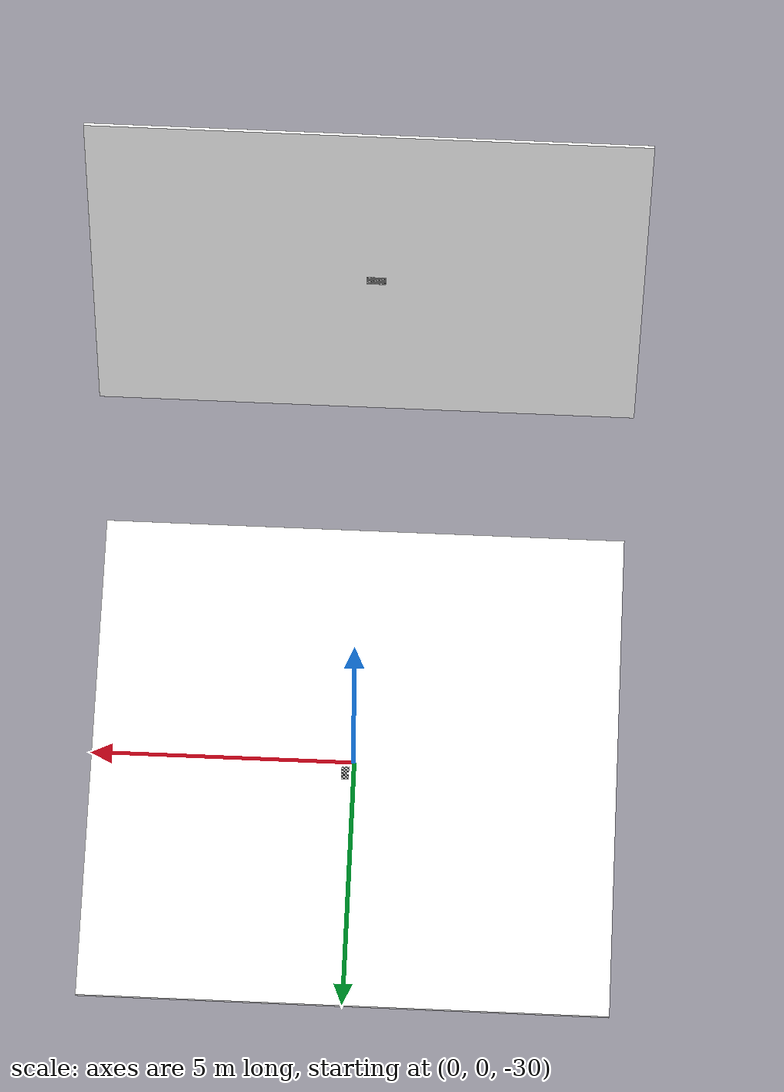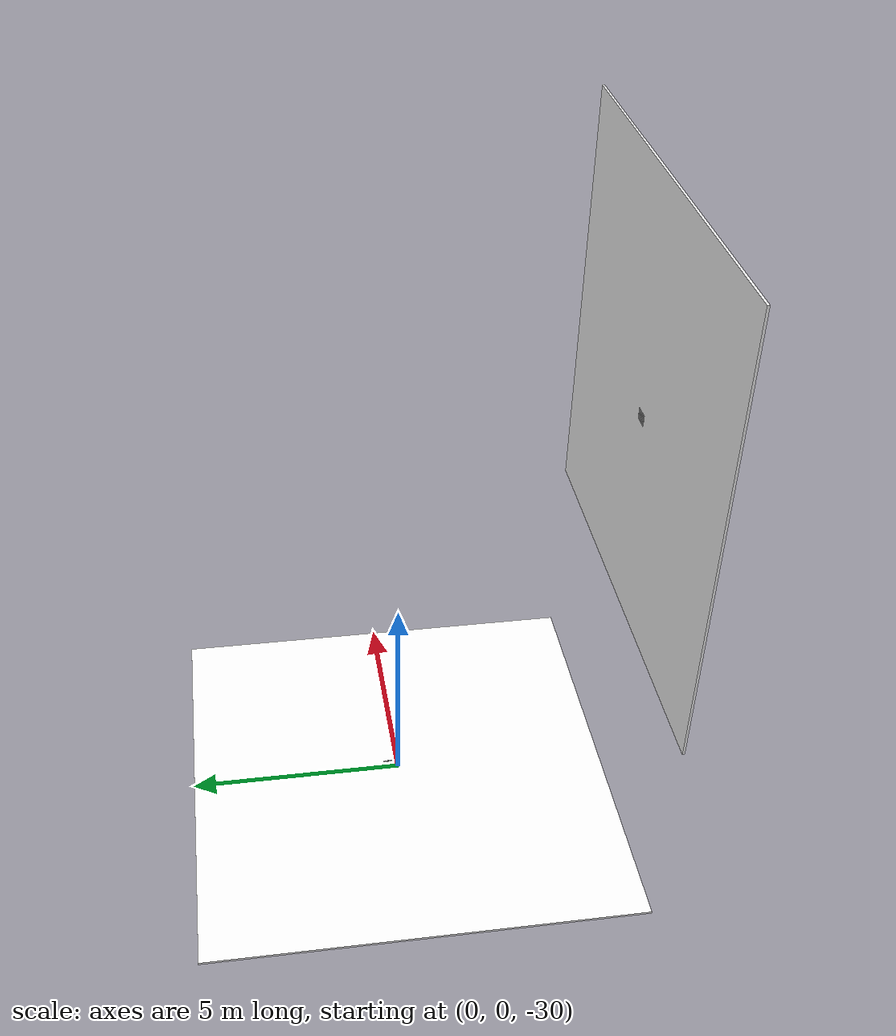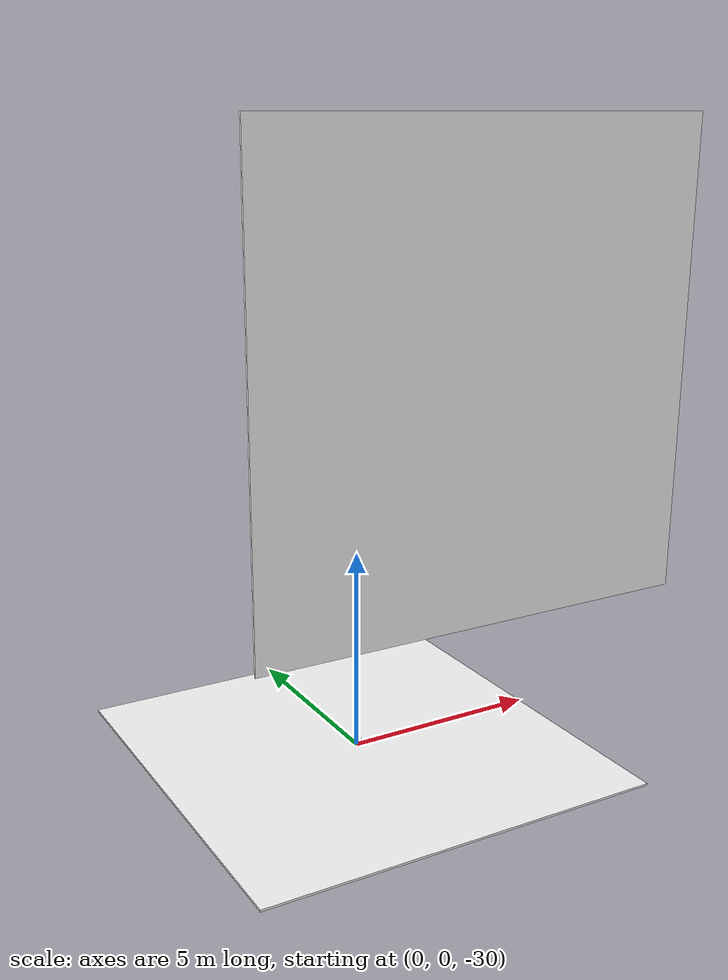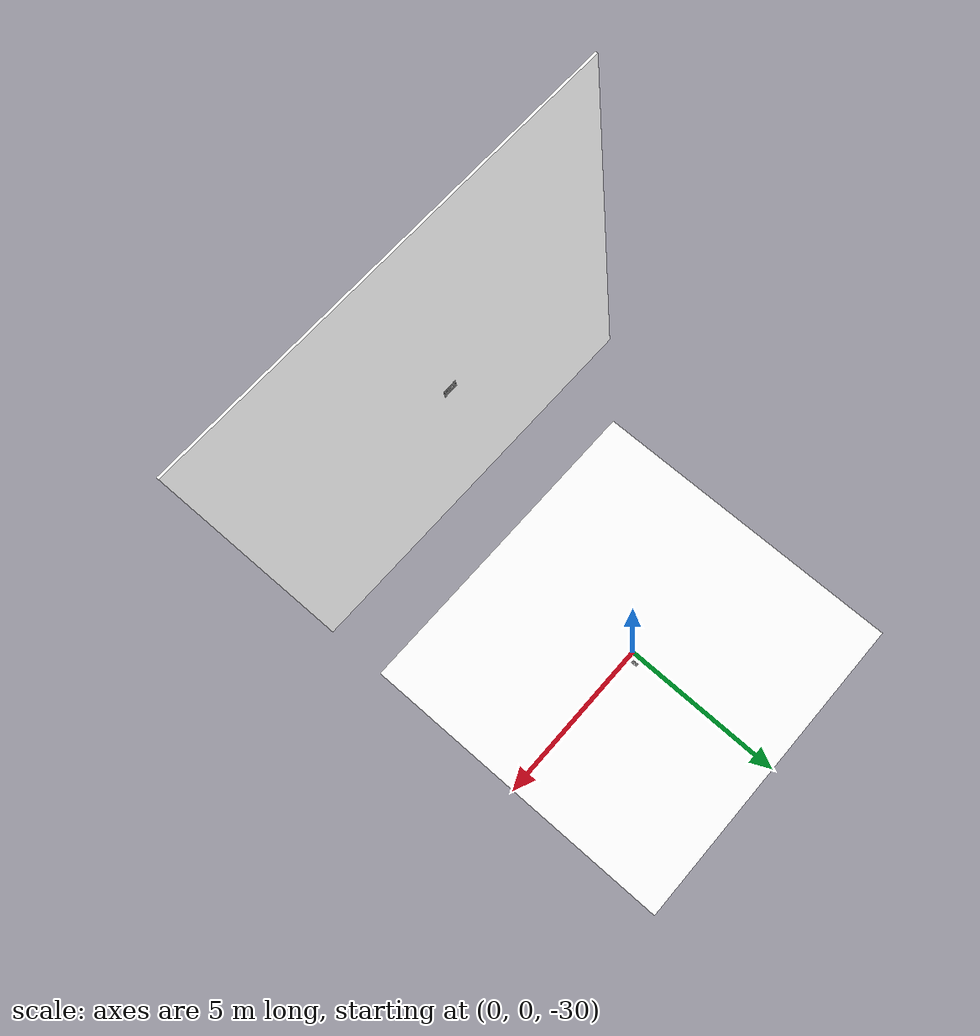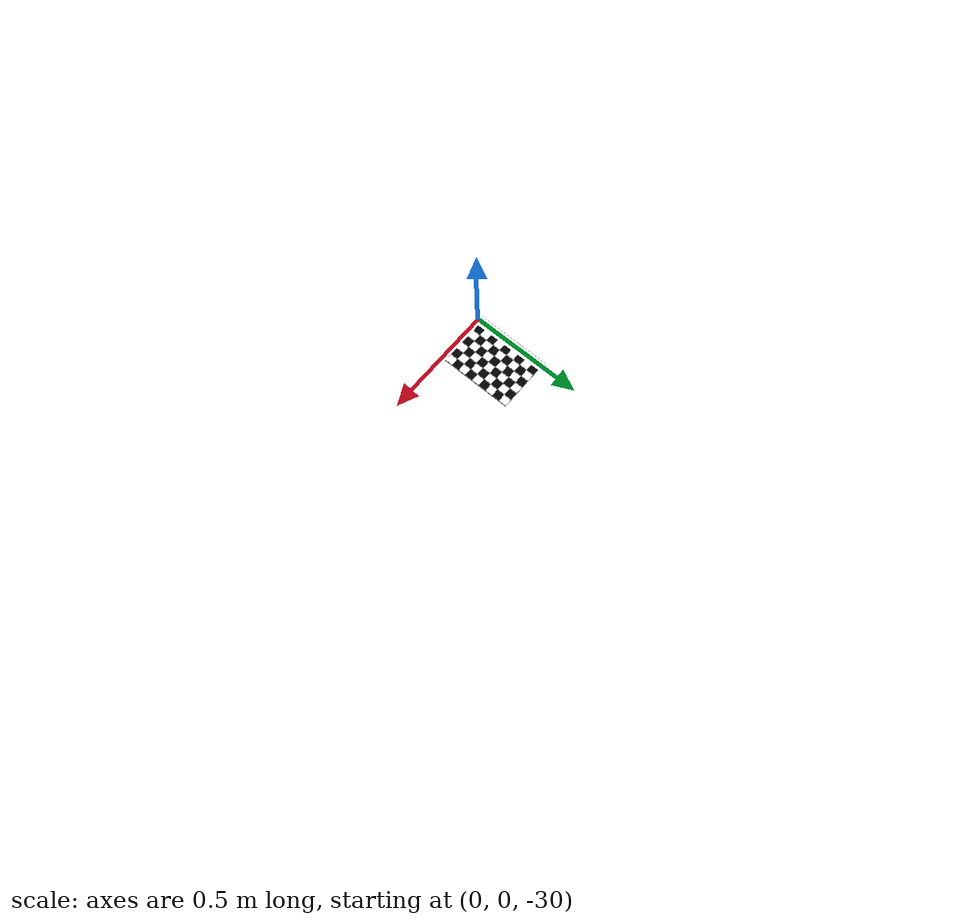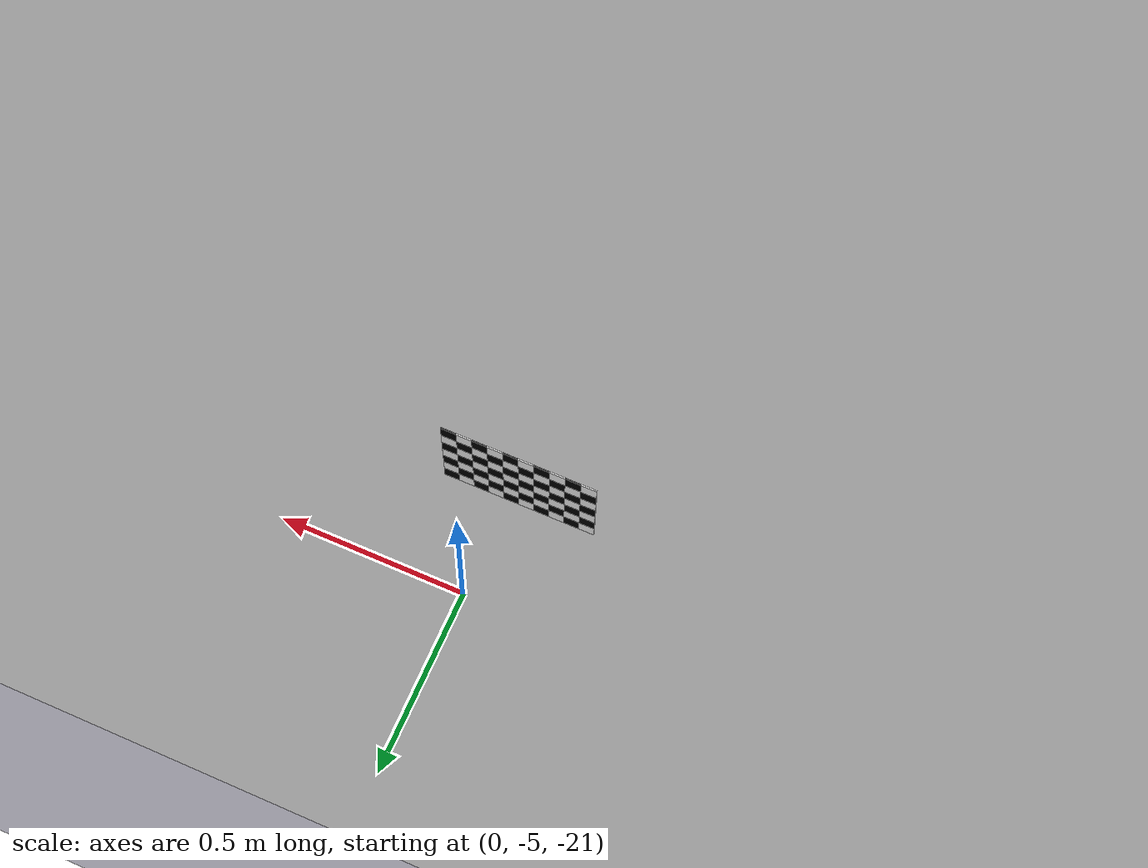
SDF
<sdf version="1.4">
 <world name="camera_calibration">
  <physics type="ode">
   <max_step_size>0.01</max_step_size>
   <real_time_factor>1</real_time_factor>
   <real_time_update_rate>100</real_time_update_rate>
  </physics>
  <model name="nwu">
   <static>true</static>
   <link name="base"/>
   <link name="orientation"/>
   <joint name="__joint_orientation" type="fixed"><child>orientation</child><parent>base</parent></joint>
  </model>
  <model name="surface"><static>true</static></model>
  <model name="usbl"><static>true</static></model>
  <include><uri>model://chessboard</uri><name>chessboard_down</name><pose>0 0 -30 0 0 0</pose></include>
  <include><uri>model://chessboard</uri><name>chessboard_front</name><pose>0 -5 -20 0 1.57 1.57</pose></include>
  <plugin name="underwater" filename="libgazebo_underwater.so">
   <model_name>flat_fish</model_name>
   <drag_coefficient>5 7.5 12.5</drag_coefficient>
   <link_name>flat_fish_body</link_name>
   <center_of_buoyancy>0 0 0.1</center_of_buoyancy>
   <buoyancy>18</buoyancy>
  </plugin>
 </world>
</sdf>

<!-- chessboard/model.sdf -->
<sdf version="1.4">
  <model name='chessboard'>
  <static>true</static>
  <pose>0 0 0 0 0 0</pose>

    <!-- Auxiliary white background -->
     <link name='chessboard_back_plane'>
       <visual name='block0'>
         <pose>0 0 -0.05 0 0 0</pose>
           <geometry>
             <box>
               <size>10 10 0.05</size>
             </box>
           </geometry>
         <material>
           <ambient>1 1 1 1</ambient>
           <diffuse>1 1 1 1</diffuse>
           <specular>1 1 1 1</specular>
         </material>
       </visual>
     </link>

     <link name='chessboard_body'>
      <visual name='block0'>
        <pose>0 0 0.001 0 0 0</pose>
          <geometry>
            <box>
            <size>0.035 0.035 0.003</size>
            </box>
          </geometry>
        <material>
          <ambient>0 0 0 1</ambient>
          <diffuse>0 0 0 1</diffuse>
          <specular>0 0 0 1</specular>
        </material>
      </visual>
      <visual name='block1'>
        <pose>0 0.035 0.001 0 0 0</pose>
          <geometry>
            <box>
            <size>0.035 0.035 0.003</size>
            </box>
          </geometry>
        <material>
          <ambient>1 1 1 1</ambient>
          <diffuse>1 1 1 1</diffuse>
          <specular>1 1 1 1</specular>
        </material>
      </visual>
      <visual name='block2'>
        <pose>0 0.07 0.001 0 0 0</pose>
          <geometry>
            <box>
            <size>0.035 0.035 0.003</size>
            </box>
          </geometry>
        <material>
          <ambient>0 0 0 1</ambient>
          <diffuse>0 0 0 1</diffuse>
          <specular>0 0 0 1</specular>
        </material>
      </visual>
      <visual name='block3'>
        <pose>0 0.105 0.001 0 0 0</pose>
          <geometry>
            <box>
            <size>0.035 0.035 0.003</size>
            </box>
          </geometry>
        <material>
          <ambient>1 1 1 1</ambient>
          <diffuse>1 1 1 1</diffuse>
          <specular>1 1 1 1</specular>
        </material>
      </visual>
      <visual name='block4'>
        <pose>0 0.14 0.001 0 0 0</pose>
          <geometry>
            <box>
            <size>0.035 0.035 0.003</size>
            </box>
          </geometry>
        <material>
          <ambient>0 0 0 1</ambient>
          <diffuse>0 0 0 1</diffuse>
          <specular>0 0 0 1</specular>
        </material>
      </visual>
      <visual name='block5'>
        <pose>0 0.175 0.001 0 0 0</pose>
          <geometry>
            <box>
            <size>0.035 0.035 0.003</size>
            </box>
          </geometry>
        <material>
          <ambient>1 1 1 1</ambient>
          <diffuse>1 1 1 1</diffuse>
          <specular>1 1 1 1</specular>
        </material>
      </visual>
      <visual name='block6'>
        <pose>0 0.21 0.001 0 0 0</pose>
          <geometry>
            <box>
            <size>0.035 0.035 0.003</size>
            </box>
          </geometry>
        <material>
          <ambient>0 0 0 1</ambient>
          <diffuse>0 0 0 1</diffuse>
          <specular>0 0 0 1</specular>
        </material>
      </visual>
      <visual name='block7'>
        <pose>0 0.245 0.001 0 0 0</pose>
          <geometry>
            <box>
            <size>0.035 0.035 0.003</size>
            </box>
          </geometry>
        <material>
          <ambient>1 1 1 1</ambient>
          <diffuse>1 1 1 1</diffuse>
          <specular>1 1 1 1</specular>
        </material>
      </visual>
      <visual name='block8'>
        <pose>0 0.28 0.001 0 0 0</pose>
          <geometry>
            <box>
            <size>0.035 0.035 0.003</size>
            </box>
          </geometry>
        <material>
          <ambient>0 0 0 1</ambient>
          <diffuse>0 0 0 1</diffuse>
          <specular>0 0 0 1</specular>
        </material>
      </visual>
      <visual name='block9'>
        <pose>0 0.315 0.001 0 0 0</pose>
          <geometry>
            <box>
            <size>0.035 0.035 0.003</size>
            </box>
          </geometry>
        <material>
          <ambient>1 1 1 1</ambient>
          <diffuse>1 1 1 1</diffuse>
          <specular>1 1 1 1</specular>
        </material>
      </visual>
      <visual name='block7'>
        <pose>0.035 0 0.001 0 0 0</pose>
          <geometry>
            <box>
            <size>0.035 0.035 0.003</size>
            </box>
          </geometry>
        <material>
          <ambient>1 1 1 1</ambient>
          <diffuse>1 1 1 1</diffuse>
          <specular>1 1 1 1</specular>
        </material>
      </visual>
      <visual name='block8'>
        <pose>0.035 0.035 0.001 0 0 0</pose>
          <geometry>
            <box>
            <size>0.035 0.035 0.003</size>
            </box>
          </geometry>
        <material>
          <ambient>0 0 0 1</ambient>
          <diffuse>0 0 0 1</diffuse>
          <specular>0 0 0 1</specular>
        </material>
      </visual>
      <visual name='block9'>
        <pose>0.035 0.07 0.001 0 0 0</pose>
          <geometry>
            <box>
            <size>0.035 0.035 0.003</size>
            </box>
          </geometry>
        <material>
          <ambient>1 1 1 1</ambient>
          <diffuse>1 1 1 1</diffuse>
          <specular>1 1 1 1</specular>
        </material>
      </visual>
      <visual name='block10'>
        <pose>0.035 0.105 0.001 0 0 0</pose>
          <geometry>
            <box>
            <size>0.035 0.035 0.003</size>
            </box>
          </geometry>
        <material>
          <ambient>0 0 0 1</ambient>
          <diffuse>0 0 0 1</diffuse>
          <specular>0 0 0 1</specular>
        </material>
      </visual>
      <visual name='block11'>
        <pose>0.035 0.14 0.001 0 0 0</pose>
          <geometry>
            <box>
            <size>0.035 0.035 0.003</size>
            </box>
          </geometry>
        <material>
          <ambient>1 1 1 1</ambient>
          <diffuse>1 1 1 1</diffuse>
          <specular>1 1 1 1</specular>
        </material>
      </visual>
      <visual name='block12'>
        <pose>0.035 0.175 0.001 0 0 0</pose>
          <geometry>
            <box>
            <size>0.035 0.035 0.003</size>
            </box>
          </geometry>
        <material>
          <ambient>0 0 0 1</ambient>
          <diffuse>0 0 0 1</diffuse>
          <specular>0 0 0 1</specular>
        </material>
      </visual>
      <visual name='block13'>
        <pose>0.035 0.21 0.001 0 0 0</pose>
          <geometry>
            <box>
            <size>0.035 0.035 0.003</size>
            </box>
          </geometry>
        <material>
          <ambient>1 1 1 1</ambient>
          <diffuse>1 1 1 1</diffuse>
          <specular>1 1 1 1</specular>
        </material>
      </visual>
      <visual name='block14'>
        <pose>0.035 0.245 0.001 0 0 0</pose>
          <geometry>
            <box>
            <size>0.035 0.035 0.003</size>
            </box>
          </geometry>
        <material>
          <ambient>0 0 0 1</ambient>
          <diffuse>0 0 0 1</diffuse>
          <specular>0 0 0 1</specular>
        </material>
      </visual>
      <visual name='block15'>
        <pose>0.035 0.28 0.001 0 0 0</pose>
          <geometry>
            <box>
            <size>0.035 0.035 0.003</size>
            </box>
          </geometry>
        <material>
          <ambient>1 1 1 1</ambient>
          <diffuse>1 1 1 1</diffuse>
          <specular>1 1 1 1</specular>
        </material>
      </visual>
      <visual name='block16'>
        <pose>0.035 0.315 0.001 0 0 0</pose>
          <geometry>
            <box>
            <size>0.035 0.035 0.003</size>
            </box>
          </geometry>
        <material>
          <ambient>0 0 0 1</ambient>
          <diffuse>0 0 0 1</diffuse>
          <specular>0 0 0 1</specular>
        </material>
      </visual>
      <visual name='block14'>
        <pose>0.07 0 0.001 0 0 0</pose>
          <geometry>
            <box>
            <size>0.035 0.035 0.003</size>
            </box>
          </geometry>
        <material>
          <ambient>0 0 0 1</ambient>
          <diffuse>0 0 0 1</diffuse>
          <specular>0 0 0 1</specular>
        </material>
      </visual>
      <visual name='block15'>
        <pose>0.07 0.035 0.001 0 0 0</pose>
          <geometry>
            <box>
            <size>0.035 0.035 0.003</size>
            </box>
          </geometry>
        <material>
          <ambient>1 1 1 1</ambient>
          <diffuse>1 1 1 1</diffuse>
          <specular>1 1 1 1</specular>
        </material>
      </visual>
      <visual name='block16'>
        <pose>0.07 0.07 0.001 0 0 0</pose>
          <geometry>
            <box>
            <size>0.035 0.035 0.003</size>
            </box>
          </geometry>
        <material>
          <ambient>0 0 0 1</ambient>
          <diffuse>0 0 0 1</diffuse>
          <specular>0 0 0 1</specular>
        </material>
      </visual>
      <visual name='block17'>
        <pose>0.07 0.105 0.001 0 0 0</pose>
          <geometry>
            <box>
            <size>0.035 0.035 0.003</size>
            </box>
          </geometry>
        <material>
          <ambient>1 1 1 1</ambient>
          <diffuse>1 1 1 1</diffuse>
          <specular>1 1 1 1</specular>
        </material>
      </visual>
      <visual name='block18'>
        <pose>0.07 0.14 0.001 0 0 0</pose>
          <geometry>
            <box>
            <size>0.035 0.035 0.003</size>
            </box>
          </geometry>
        <material>
          <ambient>0 0 0 1</ambient>
          <diffuse>0 0 0 1</diffuse>
          <specular>0 0 0 1</specular>
        </material>
      </visual>
      <visual name='block19'>
        <pose>0.07 0.175 0.001 0 0 0</pose>
          <geometry>
            <box>
            <size>0.035 0.035 0.003</size>
            </box>
          </geometry>
        <material>
          <ambient>1 1 1 1</ambient>
          <diffuse>1 1 1 1</diffuse>
          <specular>1 1 1 1</specular>
        </material>
      </visual>
      <visual name='block20'>
        <pose>0.07 0.21 0.001 0 0 0</pose>
          <geometry>
            <box>
            <size>0.035 0.035 0.003</size>
            </box>
          </geometry>
        <material>
          <ambient>0 0 0 1</ambient>
          <diffuse>0 0 0 1</diffuse>
          <specular>0 0 0 1</specular>
        </material>
      </visual>
      <visual name='block21'>
        <pose>0.07 0.245 0.001 0 0 0</pose>
          <geometry>
            <box>
            <size>0.035 0.035 0.003</size>
            </box>
          </geometry>
        <material>
          <ambient>1 1 1 1</ambient>
          <diffuse>1 1 1 1</diffuse>
          <specular>1 1 1 1</specular>
        </material>
      </visual>
      <visual name='block22'>
        <pose>0.07 0.28 0.001 0 0 0</pose>
          <geometry>
            <box>
            <size>0.035 0.035 0.003</size>
            </box>
          </geometry>
        <material>
          <ambient>0 0 0 1</ambient>
          <diffuse>0 0 0 1</diffuse>
          <specular>0 0 0 1</specular>
        </material>
      </visual>
      <visual name='block23'>
        <pose>0.07 0.315 0.001 0 0 0</pose>
          <geometry>
            <box>
            <size>0.035 0.035 0.003</size>
            </box>
          </geometry>
        <material>
          <ambient>1 1 1 1</ambient>
          <diffuse>1 1 1 1</diffuse>
          <specular>1 1 1 1</specular>
        </material>
      </visual>
      <visual name='block21'>
        <pose>0.105 0 0.001 0 0 0</pose>
          <geometry>
            <box>
            <size>0.035 0.035 0.003</size>
            </box>
          </geometry>
        <material>
          <ambient>1 1 1 1</ambient>
          <diffuse>1 1 1 1</diffuse>
          <specular>1 1 1 1</specular>
        </material>
      </visual>
      <visual name='block22'>
        <pose>0.105 0.035 0.001 0 0 0</pose>
          <geometry>
            <box>
            <size>0.035 0.035 0.003</size>
            </box>
          </geometry>
        <material>
          <ambient>0 0 0 1</ambient>
          <diffuse>0 0 0 1</diffuse>
          <specular>0 0 0 1</specular>
        </material>
      </visual>
      <visual name='block23'>
        <pose>0.105 0.07 0.001 0 0 0</pose>
          <geometry>
            <box>
            <size>0.035 0.035 0.003</size>
            </box>
          </geometry>
        <material>
          <ambient>1 1 1 1</ambient>
          <diffuse>1 1 1 1</diffuse>
          <specular>1 1 1 1</specular>
        </material>
      </visual>
      <visual name='block24'>
        <pose>0.105 0.105 0.001 0 0 0</pose>
          <geometry>
            <box>
            <size>0.035 0.035 0.003</size>
            </box>
          </geometry>
        <material>
          <ambient>0 0 0 1</ambient>
          <diffuse>0 0 0 1</diffuse>
          <specular>0 0 0 1</specular>
        </material>
      </visual>
      <visual name='block25'>
        <pose>0.105 0.14 0.001 0 0 0</pose>
          <geometry>
            <box>
            <size>0.035 0.035 0.003</size>
            </box>
          </geometry>
        <material>
          <ambient>1 1 1 1</ambient>
          <diffuse>1 1 1 1</diffuse>
          <specular>1 1 1 1</specular>
        </material>
      </visual>
      <visual name='block26'>
        <pose>0.105 0.175 0.001 0 0 0</pose>
          <geometry>
            <box>
            <size>0.035 0.035 0.003</size>
            </box>
          </geometry>
        <material>
          <ambient>0 0 0 1</ambient>
          <diffuse>0 0 0 1</diffuse>
          <specular>0 0 0 1</specular>
        </material>
      </visual>
      <visual name='block27'>
        <pose>0.105 0.21 0.001 0 0 0</pose>
          <geometry>
            <box>
            <size>0.035 0.035 0.003</size>
            </box>
          </geometry>
        <material>
          <ambient>1 1 1 1</ambient>
          <diffuse>1 1 1 1</diffuse>
          <specular>1 1 1 1</specular>
        </material>
      </visual>
      <visual name='block28'>
        <pose>0.105 0.245 0.001 0 0 0</pose>
          <geometry>
            <box>
            <size>0.035 0.035 0.003</size>
            </box>
          </geometry>
        <material>
          <ambient>0 0 0 1</ambient>
          <diffuse>0 0 0 1</diffuse>
          <specular>0 0 0 1</specular>
        </material>
      </visual>
      <visual name='block29'>
        <pose>0.105 0.28 0.001 0 0 0</pose>
          <geometry>
            <box>
            <size>0.035 0.035 0.003</size>
            </box>
          </geometry>
        <material>
          <ambient>1 1 1 1</ambient>
          <diffuse>1 1 1 1</diffuse>
          <specular>1 1 1 1</specular>
        </material>
      </visual>
      <visual name='block30'>
        <pose>0.105 0.315 0.001 0 0 0</pose>
          <geometry>
            <box>
            <size>0.035 0.035 0.003</size>
            </box>
          </geometry>
        <material>
          <ambient>0 0 0 1</ambient>
          <diffuse>0 0 0 1</diffuse>
          <specular>0 0 0 1</specular>
        </material>
      </visual>
      <visual name='block28'>
        <pose>0.14 0 0.001 0 0 0</pose>
          <geometry>
            <box>
            <size>0.035 0.035 0.003</size>
            </box>
          </geometry>
        <material>
          <ambient>0 0 0 1</ambient>
          <diffuse>0 0 0 1</diffuse>
          <specular>0 0 0 1</specular>
        </material>
      </visual>
      <visual name='block29'>
        <pose>0.14 0.035 0.001 0 0 0</pose>
          <geometry>
            <box>
            <size>0.035 0.035 0.003</size>
            </box>
          </geometry>
        <material>
          <ambient>1 1 1 1</ambient>
          <diffuse>1 1 1 1</diffuse>
          <specular>1 1 1 1</specular>
        </material>
      </visual>
      <visual name='block30'>
        <pose>0.14 0.07 0.001 0 0 0</pose>
          <geometry>
            <box>
            <size>0.035 0.035 0.003</size>
            </box>
          </geometry>
        <material>
          <ambient>0 0 0 1</ambient>
          <diffuse>0 0 0 1</diffuse>
          <specular>0 0 0 1</specular>
        </material>
      </visual>
      <visual name='block31'>
        <pose>0.14 0.105 0.001 0 0 0</pose>
          <geometry>
            <box>
            <size>0.035 0.035 0.003</size>
            </box>
          </geometry>
        <material>
          <ambient>1 1 1 1</ambient>
          <diffuse>1 1 1 1</diffuse>
          <specular>1 1 1 1</specular>
        </material>
      </visual>
      <visual name='block32'>
        <pose>0.14 0.14 0.001 0 0 0</pose>
          <geometry>
            <box>
            <size>0.035 0.035 0.003</size>
            </box>
          </geometry>
        <material>
          <ambient>0 0 0 1</ambient>
          <diffuse>0 0 0 1</diffuse>
          <specular>0 0 0 1</specular>
        </material>
      </visual>
      <visual name='block33'>
        <pose>0.14 0.175 0.001 0 0 0</pose>
          <geometry>
            <box>
            <size>0.035 0.035 0.003</size>
            </box>
          </geometry>
        <material>
          <ambient>1 1 1 1</ambient>
          <diffuse>1 1 1 1</diffuse>
          <specular>1 1 1 1</specular>
        </material>
      </visual>
      <visual name='block34'>
        <pose>0.14 0.21 0.001 0 0 0</pose>
          <geometry>
            <box>
            <size>0.035 0.035 0.003</size>
            </box>
          </geometry>
        <material>
          <ambient>0 0 0 1</ambient>
          <diffuse>0 0 0 1</diffuse>
          <specular>0 0 0 1</specular>
        </material>
      </visual>
      <visual name='block35'>
        <pose>0.14 0.245 0.001 0 0 0</pose>
          <geometry>
            <box>
            <size>0.035 0.035 0.003</size>
            </box>
          </geometry>
        <material>
          <ambient>1 1 1 1</ambient>
          <diffuse>1 1 1 1</diffuse>
          <specular>1 1 1 1</specular>
        </material>
      </visual>
      <visual name='block36'>
        <pose>0.14 0.28 0.001 0 0 0</pose>
          <geometry>
            <box>
            <size>0.035 0.035 0.003</size>
            </box>
          </geometry>
        <material>
          <ambient>0 0 0 1</ambient>
          <diffuse>0 0 0 1</diffuse>
          <specular>0 0 0 1</specular>
        </material>
      </visual>
      <visual name='block37'>
        <pose>0.14 0.315 0.001 0 0 0</pose>
          <geometry>
            <box>
            <size>0.035 0.035 0.003</size>
            </box>
          </geometry>
        <material>
          <ambient>1 1 1 1</ambient>
          <diffuse>1 1 1 1</diffuse>
          <specular>1 1 1 1</specular>
        </material>
      </visual>
      <visual name='block35'>
        <pose>0.175 0 0.001 0 0 0</pose>
          <geometry>
            <box>
            <size>0.035 0.035 0.003</size>
            </box>
          </geometry>
        <material>
          <ambient>1 1 1 1</ambient>
          <diffuse>1 1 1 1</diffuse>
          <specular>1 1 1 1</specular>
        </material>
      </visual>
      <visual name='block36'>
        <pose>0.175 0.035 0.001 0 0 0</pose>
          <geometry>
            <box>
            <size>0.035 0.035 0.003</size>
            </box>
          </geometry>
        <material>
          <ambient>0 0 0 1</ambient>
          <diffuse>0 0 0 1</diffuse>
          <specular>0 0 0 1</specular>
        </material>
      </visual>
      <visual name='block37'>
        <pose>0.175 0.07 0.001 0 0 0</pose>
          <geometry>
            <box>
            <size>0.035 0.035 0.003</size>
            </box>
          </geometry>
        <material>
          <ambient>1 1 1 1</ambient>
          <diffuse>1 1 1 1</diffuse>
          <specular>1 1 1 1</specular>
        </material>
      </visual>
      <visual name='block38'>
        <pose>0.175 0.105 0.001 0 0 0</pose>
          <geometry>
            <box>
            <size>0.035 0.035 0.003</size>
            </box>
          </geometry>
        <material>
          <ambient>0 0 0 1</ambient>
          <diffuse>0 0 0 1</diffuse>
          <specular>0 0 0 1</specular>
        </material>
      </visual>
      <visual name='block39'>
        <pose>0.175 0.14 0.001 0 0 0</pose>
          <geometry>
            <box>
            <size>0.035 0.035 0.003</size>
            </box>
          </geometry>
        <material>
          <ambient>1 1 1 1</ambient>
          <diffuse>1 1 1 1</diffuse>
          <specular>1 1 1 1</specular>
        </material>
      </visual>
      <visual name='block40'>
        <pose>0.175 0.175 0.001 0 0 0</pose>
          <geometry>
            <box>
            <size>0.035 0.035 0.003</size>
            </box>
          </geometry>
        <material>
          <ambient>0 0 0 1</ambient>
          <diffuse>0 0 0 1</diffuse>
          <specular>0 0 0 1</specular>
        </material>
      </visual>
      <visual name='block41'>
        <pose>0.175 0.21 0.001 0 0 0</pose>
          <geometry>
            <box>
            <size>0.035 0.035 0.003</size>
            </box>
          </geometry>
        <material>
          <ambient>1 1 1 1</ambient>
          <diffuse>1 1 1 1</diffuse>
          <specular>1 1 1 1</specular>
        </material>
      </visual>
      <visual name='block42'>
        <pose>0.175 0.245 0.001 0 0 0</pose>
          <geometry>
            <box>
            <size>0.035 0.035 0.003</size>
            </box>
          </geometry>
        <material>
          <ambient>0 0 0 1</ambient>
          <diffuse>0 0 0 1</diffuse>
          <specular>0 0 0 1</specular>
        </material>
      </visual>
      <visual name='block43'>
        <pose>0.175 0.28 0.001 0 0 0</pose>
          <geometry>
            <box>
            <size>0.035 0.035 0.003</size>
            </box>
          </geometry>
        <material>
          <ambient>1 1 1 1</ambient>
          <diffuse>1 1 1 1</diffuse>
          <specular>1 1 1 1</specular>
        </material>
      </visual>
      <visual name='block44'>
        <pose>0.175 0.315 0.001 0 0 0</pose>
          <geometry>
            <box>
            <size>0.035 0.035 0.003</size>
            </box>
          </geometry>
        <material>
          <ambient>0 0 0 1</ambient>
          <diffuse>0 0 0 1</diffuse>
          <specular>0 0 0 1</specular>
        </material>
      </visual>
      <visual name='block42'>
        <pose>0.21 0 0.001 0 0 0</pose>
          <geometry>
            <box>
            <size>0.035 0.035 0.003</size>
            </box>
          </geometry>
        <material>
          <ambient>0 0 0 1</ambient>
          <diffuse>0 0 0 1</diffuse>
          <specular>0 0 0 1</specular>
        </material>
      </visual>
      <visual name='block43'>
        <pose>0.21 0.035 0.001 0 0 0</pose>
          <geometry>
            <box>
            <size>0.035 0.035 0.003</size>
            </box>
          </geometry>
        <material>
          <ambient>1 1 1 1</ambient>
          <diffuse>1 1 1 1</diffuse>
          <specular>1 1 1 1</specular>
        </material>
      </visual>
      <visual name='block44'>
        <pose>0.21 0.07 0.001 0 0 0</pose>
          <geometry>
            <box>
            <size>0.035 0.035 0.003</size>
            </box>
          </geometry>
        <material>
          <ambient>0 0 0 1</ambient>
          <diffuse>0 0 0 1</diffuse>
          <specular>0 0 0 1</specular>
        </material>
      </visual>
      <visual name='block45'>
        <pose>0.21 0.105 0.001 0 0 0</pose>
          <geometry>
            <box>
            <size>0.035 0.035 0.003</size>
            </box>
          </geometry>
        <material>
          <ambient>1 1 1 1</ambient>
          <diffuse>1 1 1 1</diffuse>
          <specular>1 1 1 1</specular>
        </material>
      </visual>
      <visual name='block46'>
        <pose>0.21 0.14 0.001 0 0 0</pose>
          <geometry>
            <box>
            <size>0.035 0.035 0.003</size>
            </box>
          </geometry>
        <material>
          <ambient>0 0 0 1</ambient>
          <diffuse>0 0 0 1</diffuse>
          <specular>0 0 0 1</specular>
        </material>
      </visual>
      <visual name='block47'>
        <pose>0.21 0.175 0.001 0 0 0</pose>
          <geometry>
            <box>
            <size>0.035 0.035 0.003</size>
            </box>
          </geometry>
        <material>
          <ambient>1 1 1 1</ambient>
          <diffuse>1 1 1 1</diffuse>
          <specular>1 1 1 1</specular>
        </material>
      </visual>
      <visual name='block48'>
        <pose>0.21 0.21 0.001 0 0 0</pose>
          <geometry>
            <box>
            <size>0.035 0.035 0.003</size>
            </box>
          </geometry>
        <material>
          <ambient>0 0 0 1</ambient>
          <diffuse>0 0 0 1</diffuse>
          <specular>0 0 0 1</specular>
        </material>
      </visual>
      <visual name='block49'>
        <pose>0.21 0.245 0.001 0 0 0</pose>
          <geometry>
            <box>
            <size>0.035 0.035 0.003</size>
            </box>
          </geometry>
        <material>
          <ambient>1 1 1 1</ambient>
          <diffuse>1 1 1 1</diffuse>
          <specular>1 1 1 1</specular>
        </material>
      </visual>
      <visual name='block50'>
        <pose>0.21 0.28 0.001 0 0 0</pose>
          <geometry>
            <box>
            <size>0.035 0.035 0.003</size>
            </box>
          </geometry>
        <material>
          <ambient>0 0 0 1</ambient>
          <diffuse>0 0 0 1</diffuse>
          <specular>0 0 0 1</specular>
        </material>
      </visual>
      <visual name='block51'>
        <pose>0.21 0.315 0.001 0 0 0</pose>
          <geometry>
            <box>
            <size>0.035 0.035 0.003</size>
            </box>
          </geometry>
        <material>
          <ambient>1 1 1 1</ambient>
          <diffuse>1 1 1 1</diffuse>
          <specular>1 1 1 1</specular>
        </material>
      </visual>
      <visual name='thin_layer'>
        <pose>0.105 0.105 0 0 0 0</pose>
          <geometry>
            <box>
            <size>0.245 0.245 0.001</size>
            </box>
          </geometry>
        <material>
          <ambient>0 0 0 1</ambient>
          <diffuse>0 0 0 1</diffuse>
          <specular>0 0 0 1</specular>
        </material>
      </visual>
    </link>
  </model>
</sdf>
